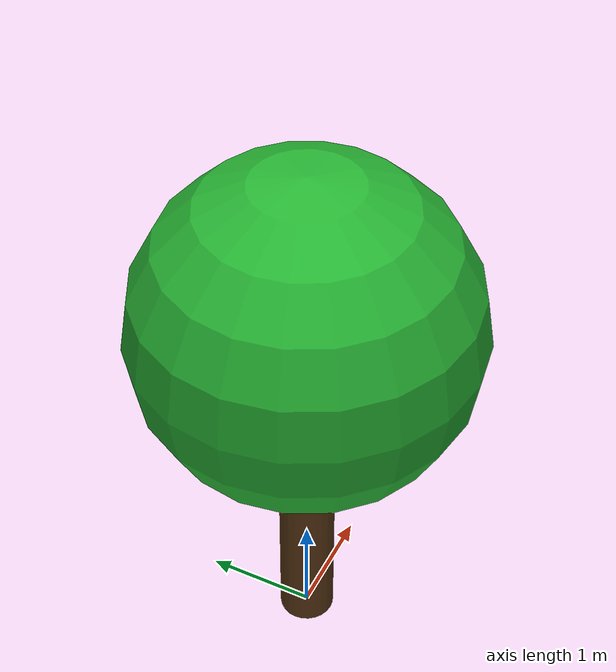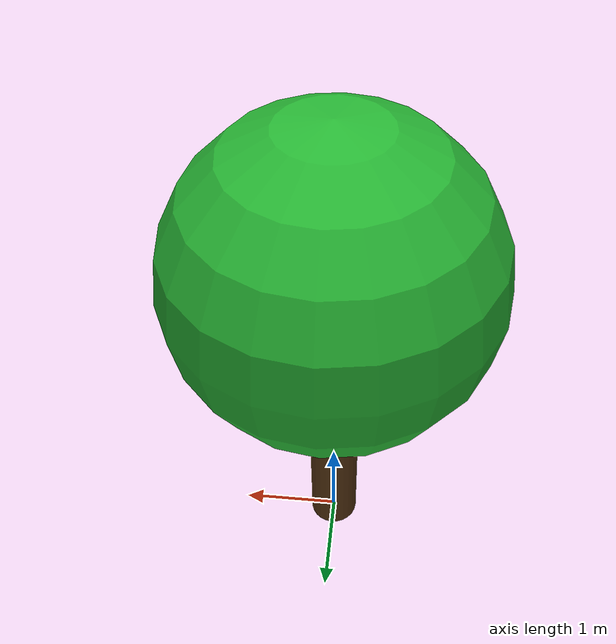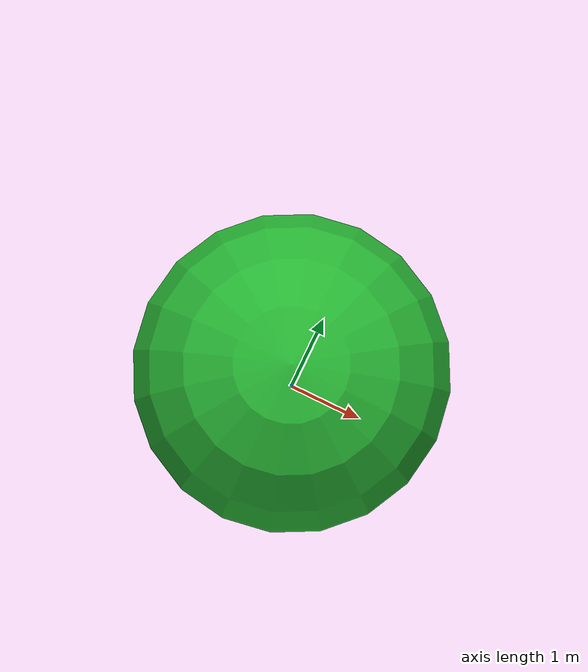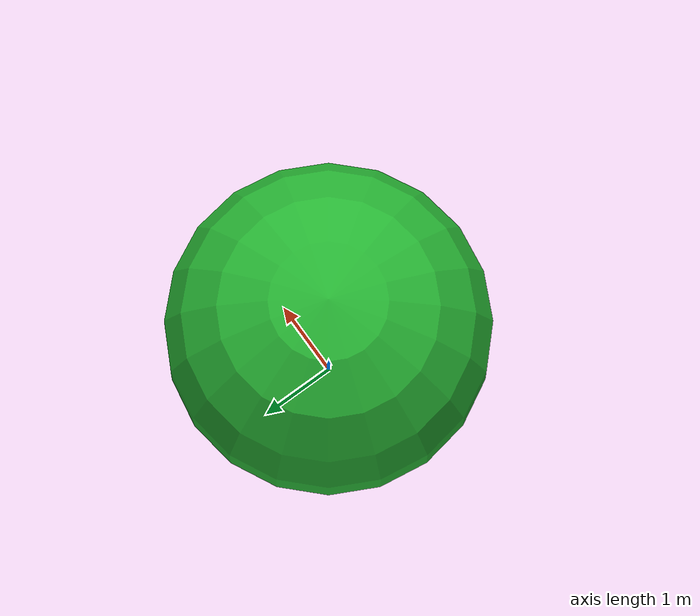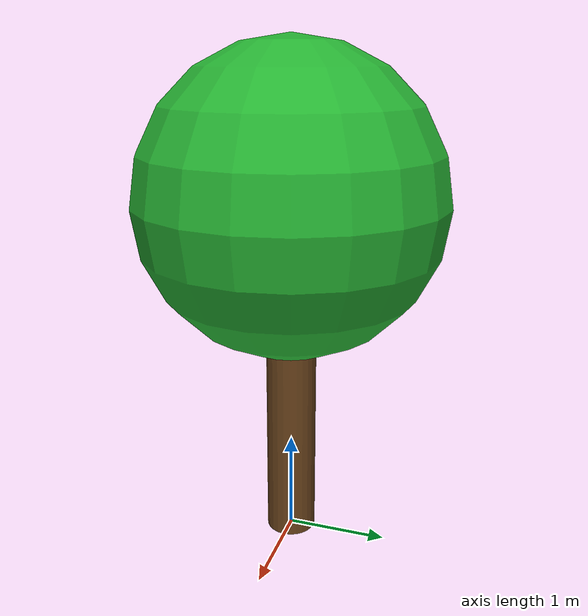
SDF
<?xml version="1.0"?>
<sdf version="1.6">
  <model name="tree_obstacle">
    <static>true</static>
    <link name="tree_link">
      <!-- Trunk -->
      <collision name="trunk_collision">
        <pose>0 0 1.5 0 0 0</pose>
        <geometry>
          <cylinder>
            <radius>0.25</radius>
            <length>3.0</length>
          </cylinder>
        </geometry>
      </collision>
      <visual name="trunk_visual">
        <pose>0 0 1.5 0 0 0</pose>
        <geometry>
          <cylinder>
            <radius>0.25</radius>
            <length>3.0</length>
          </cylinder>
        </geometry>
        <material>
          <ambient>0.4 0.25 0.1 1.0</ambient>
          <diffuse>0.4 0.25 0.1 1.0</diffuse>
        </material>
      </visual>

      <!-- Foliage / Canopy -->
      <collision name="canopy_collision">
        <pose>0 0 3.5 0 0 0</pose>
        <geometry>
          <sphere>
            <radius>1.5</radius>
          </sphere>
        </geometry>
      </collision>
      <visual name="canopy_visual">
        <pose>0 0 3.5 0 0 0</pose>
        <geometry>
          <sphere>
            <radius>1.5</radius>
          </sphere>
        </geometry>
        <material>
          <ambient>0.1 0.6 0.15 1.0</ambient>
          <diffuse>0.15 0.7 0.2 1.0</diffuse>
        </material>
      </visual>
    </link>
  </model>
</sdf>
